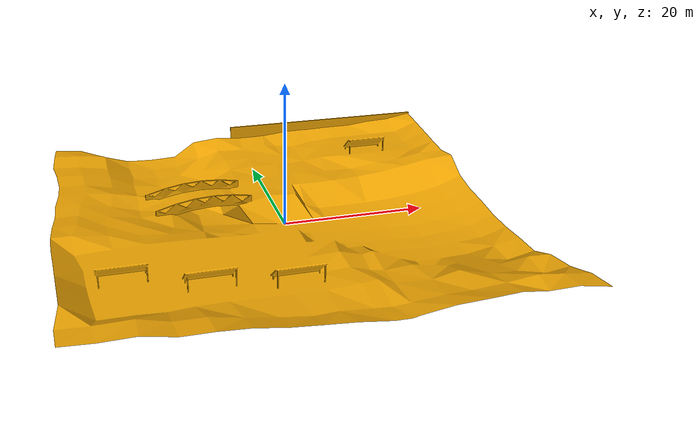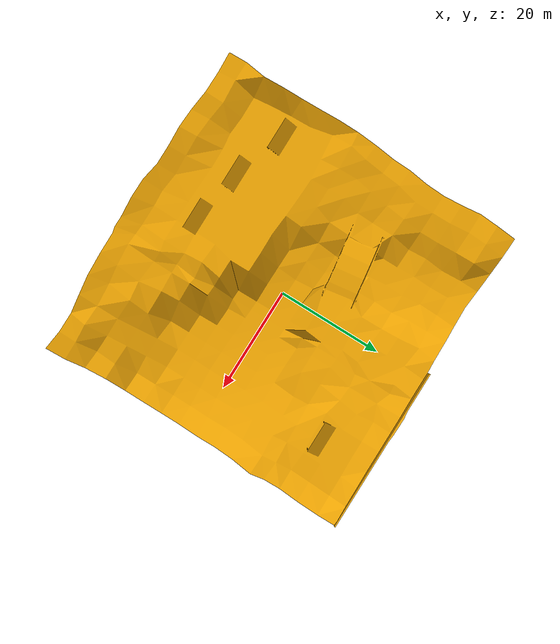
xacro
<?xml version="1.0"?>
<robot name="inspection_world" xmlns:xacro="http://www.ros.org/wiki/xacro">
  <link name="inspection_world_link">
    <inertial>
      <origin xyz="0 0 0" rpy="0 0 0"/>
      <mass value="1"/>
      <inertia ixx="1" ixy="0" ixz="0" iyy="1" iyz="0" izz="1"/>
    </inertial>
    <visual>
      <origin xyz="0 0 0" rpy="0 0 0"/>
      <geometry>
        <mesh filename="package://cpr_inspection_gazebo/meshes/inspection_wide_bridge_more_flattened.dae"/>
      </geometry>
    </visual>
    <collision>
      <origin xyz="0 0 0" rpy="0 0 0"/>
      <geometry>
        <mesh filename="package://cpr_inspection_gazebo/meshes/inspection_wide_bridge_more_flattened.dae"/>
      </geometry>
      <surface>
        <friction>
          <ode>
            <mu>100</mu>
            <mu2>50</mu2>
          </ode>
        </friction>
      </surface>
    </collision>
  </link>
  <gazebo> <static>true</static></gazebo>
</robot>
